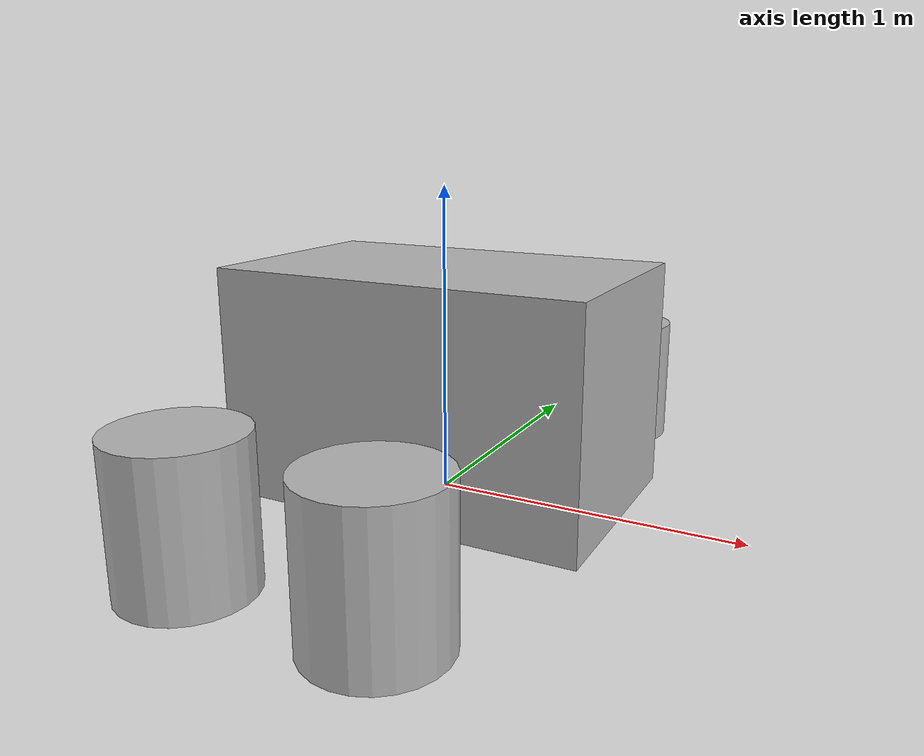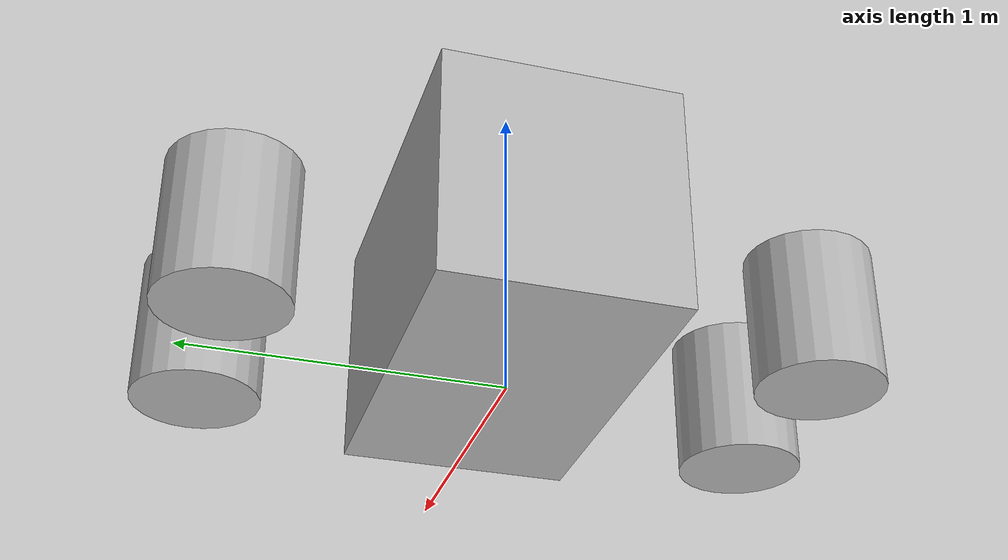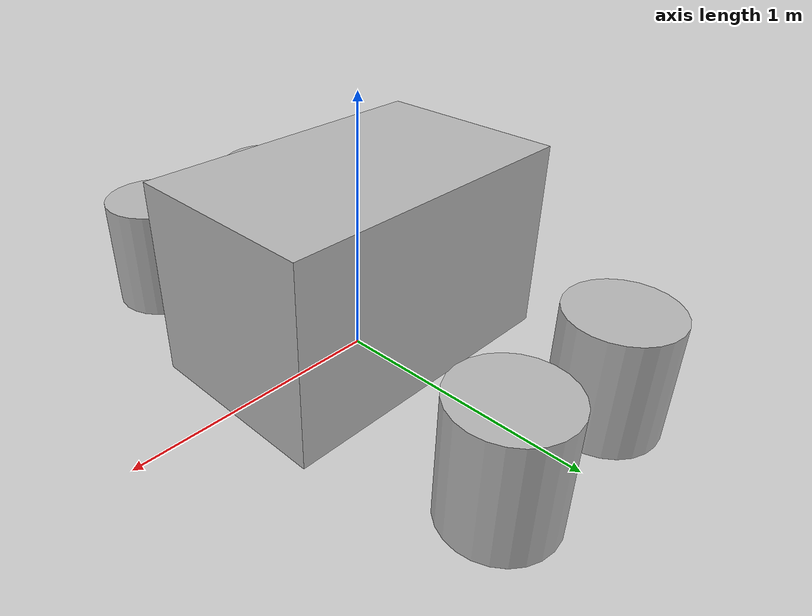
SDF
<?xml version="1.0"?>
<sdf version="1.7">

<model name="table_set">

  <static>true</static>

  <link name="table_set_link">

    <!-- simple_restaurant.world에서 model://table_set으로 불러오는 테이블 세트. -->
    <!-- 테이블 1개와 의자 4개의 시각·충돌 형상을 하나의 고정 모델로 묶는다. -->
    <!-- 테이블 -->

    <collision name="table_collision">
      <pose>0 0 0.375 0 0 0</pose>

      <geometry>
        <box>
          <size>1.22 0.75 0.75</size>
        </box>
      </geometry>
    </collision>

    <visual name="table_visual">
      <pose>0 0 0.375 0 0 0</pose>

      <geometry>
        <box>
          <size>1.22 0.75 0.75</size>
        </box>
      </geometry>
    </visual>

    <!-- 의자 1 -->

    <collision name="chair1_collision">
      <pose>-0.30 0.90 0.2 0 0 0</pose>

      <geometry>
        <cylinder>
          <radius>0.2</radius>
          <length>0.45</length>
        </cylinder>
      </geometry>
    </collision>

    <visual name="chair1_visual">
      <pose>-0.30 0.90 0.2 0 0 0</pose>

      <geometry>
        <cylinder>
          <radius>0.2</radius>
          <length>0.45</length>
        </cylinder>
      </geometry>
    </visual>

    <!-- 의자 2 -->

    <collision name="chair2_collision">
      <pose>0.30 0.90 0.2 0 0 0</pose>

      <geometry>
        <cylinder>
          <radius>0.2</radius>
          <length>0.45</length>
        </cylinder>
      </geometry>
    </collision>

    <visual name="chair2_visual">
      <pose>0.30 0.90 0.2 0 0 0</pose>

      <geometry>
        <cylinder>
          <radius>0.2</radius>
          <length>0.45</length>
        </cylinder>
      </geometry>
    </visual>

    <!-- 의자 3 -->

    <collision name="chair3_collision">
      <pose>-0.30 -0.90 0.2 0 0 0</pose>

      <geometry>
        <cylinder>
          <radius>0.2</radius>
          <length>0.45</length>
        </cylinder>
      </geometry>
    </collision>

    <visual name="chair3_visual">
      <pose>-0.30 -0.90 0.2 0 0 0</pose>

      <geometry>
        <cylinder>
          <radius>0.2</radius>
          <length>0.45</length>
        </cylinder>
      </geometry>
    </visual>

    <!-- 의자 4 -->

    <collision name="chair4_collision">
      <pose>0.30 -0.90 0.2 0 0 0</pose>

      <geometry>
        <cylinder>
          <radius>0.2</radius>
          <length>0.45</length>
        </cylinder>
      </geometry>
    </collision>

    <visual name="chair4_visual">
      <pose>0.30 -0.90 0.2 0 0 0</pose>

      <geometry>
        <cylinder>
          <radius>0.2</radius>
          <length>0.45</length>
        </cylinder>
      </geometry>
    </visual>

  </link>

</model>
</sdf>
